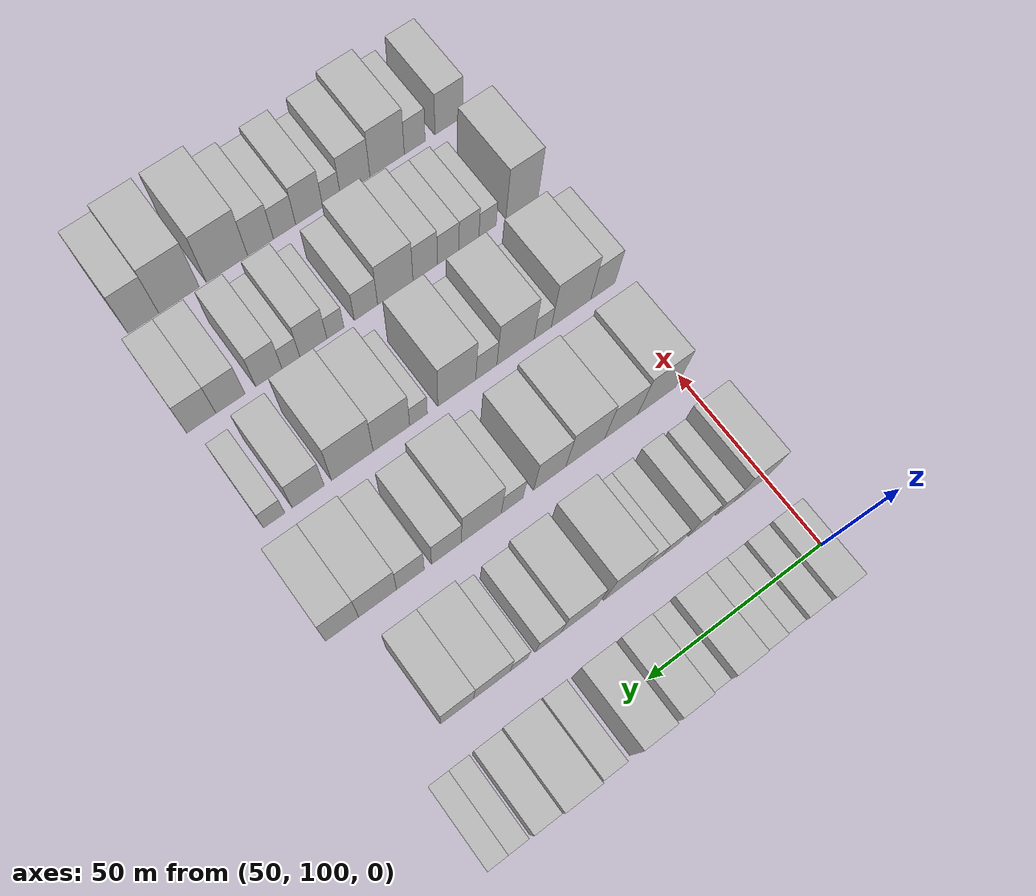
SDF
<sdf version="1.6">
 <world name="default">
  <model name="building_76">
   <static>1</static>
   <pose>50.0000 107.3215 0 0.000000 0.000000 0.000000</pose>
   <link name="link">
    <pose>0 0 9.00 0 0 0</pose>
    <collision name="collision"><geometry><box><size>20.0000 8.4116 18.0000</size></box></geometry></collision>
    <visual name="visual">
     <cast_shadows>0</cast_shadows>
     <geometry><box><size>20.0000 8.4116 18.0000</size></box></geometry>
     <material>
      <script>
       <uri>model://HANNAS_wall/materials/scripts</uri>
       <uri>model://HANNAS_wall/materials/textures</uri>
       <name>vrc/HANNAS_wall</name>
      </script>
     </material>
    </visual>
   </link>
  </model>
  <model name="building_77">
   <static>1</static>
   <pose>50.0000 114.5754 0 0.000000 0.000000 0.000000</pose>
   <link name="link">
    <pose>0 0 7.50 0 0 0</pose>
    <collision name="collision"><geometry><box><size>20.0000 6.0961 15.0000</size></box></geometry></collision>
    <visual name="visual">
     <cast_shadows>0</cast_shadows>
     <geometry><box><size>20.0000 6.0961 15.0000</size></box></geometry>
     <material>
      <script>
       <uri>model://HANNAS_wall/materials/scripts</uri>
       <uri>model://HANNAS_wall/materials/textures</uri>
       <name>vrc/HANNAS_wall</name>
      </script>
     </material>
    </visual>
   </link>
  </model>
  <model name="building_78">
   <static>1</static>
   <pose>50.0000 120.5097 0 0.000000 0.000000 0.000000</pose>
   <link name="link">
    <pose>0 0 6.00 0 0 0</pose>
    <collision name="collision"><geometry><box><size>20.0000 5.7727 12.0000</size></box></geometry></collision>
    <visual name="visual">
     <cast_shadows>0</cast_shadows>
     <geometry><box><size>20.0000 5.7727 12.0000</size></box></geometry>
     <material>
      <script>
       <uri>model://HANNAS_wall/materials/scripts</uri>
       <uri>model://HANNAS_wall/materials/textures</uri>
       <name>vrc/HANNAS_wall</name>
      </script>
     </material>
    </visual>
   </link>
  </model>
  <model name="building_79">
   <static>1</static>
   <pose>50.0000 126.5736 0 0.000000 0.000000 0.000000</pose>
   <link name="link">
    <pose>0 0 7.50 0 0 0</pose>
    <collision name="collision"><geometry><box><size>20.0000 6.3551 15.0000</size></box></geometry></collision>
    <visual name="visual">
     <cast_shadows>0</cast_shadows>
     <geometry><box><size>20.0000 6.3551 15.0000</size></box></geometry>
     <material>
      <script>
       <uri>model://HANNAS_wall/materials/scripts</uri>
       <uri>model://HANNAS_wall/materials/textures</uri>
       <name>vrc/HANNAS_wall</name>
      </script>
     </material>
    </visual>
   </link>
  </model>
  <model name="building_80">
   <static>1</static>
   <pose>50.0000 133.9557 0 0.000000 0.000000 0.000000</pose>
   <link name="link">
    <pose>0 0 9.00 0 0 0</pose>
    <collision name="collision"><geometry><box><size>20.0000 8.4091 18.0000</size></box></geometry></collision>
    <visual name="visual">
     <cast_shadows>0</cast_shadows>
     <geometry><box><size>20.0000 8.4091 18.0000</size></box></geometry>
     <material>
      <script>
       <uri>model://HANNAS_wall/materials/scripts</uri>
       <uri>model://HANNAS_wall/materials/textures</uri>
       <name>vrc/HANNAS_wall</name>
      </script>
     </material>
    </visual>
   </link>
  </model>
  <model name="building_81">
   <static>1</static>
   <pose>50.0000 140.6419 0 0.000000 0.000000 0.000000</pose>
   <link name="link">
    <pose>0 0 6.00 0 0 0</pose>
    <collision name="collision"><geometry><box><size>20.0000 4.9633 12.0000</size></box></geometry></collision>
    <visual name="visual">
     <cast_shadows>0</cast_shadows>
     <geometry><box><size>20.0000 4.9633 12.0000</size></box></geometry>
     <material>
      <script>
       <uri>model://HANNAS_wall/materials/scripts</uri>
       <uri>model://HANNAS_wall/materials/textures</uri>
       <name>vrc/HANNAS_wall</name>
      </script>
     </material>
    </visual>
   </link>
  </model>
  <model name="building_82">
   <static>1</static>
   <pose>50.0000 148.2240 0 0.000000 0.000000 0.000000</pose>
   <link name="link">
    <pose>0 0 9.00 0 0 0</pose>
    <collision name="collision"><geometry><box><size>20.0000 8.2010 18.0000</size></box></geometry></collision>
    <visual name="visual">
     <cast_shadows>0</cast_shadows>
     <geometry><box><size>20.0000 8.2010 18.0000</size></box></geometry>
     <material>
      <script>
       <uri>model://HANNAS_wall/materials/scripts</uri>
       <uri>model://HANNAS_wall/materials/textures</uri>
       <name>vrc/HANNAS_wall</name>
      </script>
     </material>
    </visual>
   </link>
  </model>
  <model name="building_83">
   <static>1</static>
   <pose>50.0000 158.7128 0 0.000000 0.000000 0.000000</pose>
   <link name="link">
    <pose>0 0 10.50 0 0 0</pose>
    <collision name="collision"><geometry><box><size>20.0000 8.7766 21.0000</size></box></geometry></collision>
    <visual name="visual">
     <cast_shadows>0</cast_shadows>
     <geometry><box><size>20.0000 8.7766 21.0000</size></box></geometry>
     <material>
      <script>
       <uri>model://HANNAS_wall/materials/scripts</uri>
       <uri>model://HANNAS_wall/materials/textures</uri>
       <name>vrc/HANNAS_wall</name>
      </script>
     </material>
    </visual>
   </link>
  </model>
  <model name="building_84">
   <static>1</static>
   <pose>50.0000 169.2165 0 0.000000 0.000000 0.000000</pose>
   <link name="link">
    <pose>0 0 7.50 0 0 0</pose>
    <collision name="collision"><geometry><box><size>20.0000 6.2307 15.0000</size></box></geometry></collision>
    <visual name="visual">
     <cast_shadows>0</cast_shadows>
     <geometry><box><size>20.0000 6.2307 15.0000</size></box></geometry>
     <material>
      <script>
       <uri>model://HANNAS_wall/materials/scripts</uri>
       <uri>model://HANNAS_wall/materials/textures</uri>
       <name>vrc/HANNAS_wall</name>
      </script>
     </material>
    </visual>
   </link>
  </model>
  <model name="building_85">
   <static>1</static>
   <pose>50.0000 178.0529 0 0.000000 0.000000 0.000000</pose>
   <link name="link">
    <pose>0 0 10.50 0 0 0</pose>
    <collision name="collision"><geometry><box><size>20.0000 9.4421 21.0000</size></box></geometry></collision>
    <visual name="visual">
     <cast_shadows>0</cast_shadows>
     <geometry><box><size>20.0000 9.4421 21.0000</size></box></geometry>
     <material>
      <script>
       <uri>model://HANNAS_wall/materials/scripts</uri>
       <uri>model://HANNAS_wall/materials/textures</uri>
       <name>vrc/HANNAS_wall</name>
      </script>
     </material>
    </visual>
   </link>
  </model>
  <model name="building_86">
   <static>1</static>
   <pose>50.0000 186.3196 0 0.000000 0.000000 0.000000</pose>
   <link name="link">
    <pose>0 0 7.50 0 0 0</pose>
    <collision name="collision"><geometry><box><size>20.0000 7.0913 15.0000</size></box></geometry></collision>
    <visual name="visual">
     <cast_shadows>0</cast_shadows>
     <geometry><box><size>20.0000 7.0913 15.0000</size></box></geometry>
     <material>
      <script>
       <uri>model://HANNAS_wall/materials/scripts</uri>
       <uri>model://HANNAS_wall/materials/textures</uri>
       <name>vrc/HANNAS_wall</name>
      </script>
     </material>
    </visual>
   </link>
  </model>
  <model name="building_87">
   <static>1</static>
   <pose>50.0000 193.4706 0 0.000000 0.000000 0.000000</pose>
   <link name="link">
    <pose>0 0 6.00 0 0 0</pose>
    <collision name="collision"><geometry><box><size>20.0000 5.2106 12.0000</size></box></geometry></collision>
    <visual name="visual">
     <cast_shadows>0</cast_shadows>
     <geometry><box><size>20.0000 5.2106 12.0000</size></box></geometry>
     <material>
      <script>
       <uri>model://HANNAS_wall/materials/scripts</uri>
       <uri>model://HANNAS_wall/materials/textures</uri>
       <name>vrc/HANNAS_wall</name>
      </script>
     </material>
    </visual>
   </link>
  </model>
  <model name="building_88">
   <static>1</static>
   <pose>50.0000 198.6816 0 0.000000 0.000000 0.000000</pose>
   <link name="link">
    <pose>0 0 6.00 0 0 0</pose>
    <collision name="collision"><geometry><box><size>20.0000 5.2114 12.0000</size></box></geometry></collision>
    <visual name="visual">
     <cast_shadows>0</cast_shadows>
     <geometry><box><size>20.0000 5.2114 12.0000</size></box></geometry>
     <material>
      <script>
       <uri>model://HANNAS_wall/materials/scripts</uri>
       <uri>model://HANNAS_wall/materials/textures</uri>
       <name>vrc/HANNAS_wall</name>
      </script>
     </material>
    </visual>
   </link>
  </model>
  <model name="building_193">
   <static>1</static>
   <pose>79.0000 104.6618 0 0.000000 0.000000 0.000000</pose>
   <link name="link">
    <pose>0 0 10.50 0 0 0</pose>
    <collision name="collision"><geometry><box><size>20.0000 10.0285 21.0000</size></box></geometry></collision>
    <visual name="visual">
     <cast_shadows>0</cast_shadows>
     <geometry><box><size>20.0000 10.0285 21.0000</size></box></geometry>
     <material>
      <script>
       <uri>model://HANNAS_wall/materials/scripts</uri>
       <uri>model://HANNAS_wall/materials/textures</uri>
       <name>vrc/HANNAS_wall</name>
      </script>
     </material>
    </visual>
   </link>
  </model>
  <model name="building_194">
   <static>1</static>
   <pose>79.0000 112.2124 0 0.000000 0.000000 0.000000</pose>
   <link name="link">
    <pose>0 0 6.00 0 0 0</pose>
    <collision name="collision"><geometry><box><size>20.0000 5.0727 12.0000</size></box></geometry></collision>
    <visual name="visual">
     <cast_shadows>0</cast_shadows>
     <geometry><box><size>20.0000 5.0727 12.0000</size></box></geometry>
     <material>
      <script>
       <uri>model://HANNAS_wall/materials/scripts</uri>
       <uri>model://HANNAS_wall/materials/textures</uri>
       <name>vrc/HANNAS_wall</name>
      </script>
     </material>
    </visual>
   </link>
  </model>
  <model name="building_195">
   <static>1</static>
   <pose>79.0000 119.7548 0 0.000000 0.000000 0.000000</pose>
   <link name="link">
    <pose>0 0 7.50 0 0 0</pose>
    <collision name="collision"><geometry><box><size>20.0000 6.0122 15.0000</size></box></geometry></collision>
    <visual name="visual">
     <cast_shadows>0</cast_shadows>
     <geometry><box><size>20.0000 6.0122 15.0000</size></box></geometry>
     <material>
      <script>
       <uri>model://HANNAS_wall/materials/scripts</uri>
       <uri>model://HANNAS_wall/materials/textures</uri>
       <name>vrc/HANNAS_wall</name>
      </script>
     </material>
    </visual>
   </link>
  </model>
  <model name="building_196">
   <static>1</static>
   <pose>79.0000 127.6562 0 0.000000 0.000000 0.000000</pose>
   <link name="link">
    <pose>0 0 6.00 0 0 0</pose>
    <collision name="collision"><geometry><box><size>20.0000 5.7906 12.0000</size></box></geometry></collision>
    <visual name="visual">
     <cast_shadows>0</cast_shadows>
     <geometry><box><size>20.0000 5.7906 12.0000</size></box></geometry>
     <material>
      <script>
       <uri>model://HANNAS_wall/materials/scripts</uri>
       <uri>model://HANNAS_wall/materials/textures</uri>
       <name>vrc/HANNAS_wall</name>
      </script>
     </material>
    </visual>
   </link>
  </model>
  <model name="building_197">
   <static>1</static>
   <pose>79.0000 133.4820 0 0.000000 0.000000 0.000000</pose>
   <link name="link">
    <pose>0 0 6.00 0 0 0</pose>
    <collision name="collision"><geometry><box><size>20.0000 5.8611 12.0000</size></box></geometry></collision>
    <visual name="visual">
     <cast_shadows>0</cast_shadows>
     <geometry><box><size>20.0000 5.8611 12.0000</size></box></geometry>
     <material>
      <script>
       <uri>model://HANNAS_wall/materials/scripts</uri>
       <uri>model://HANNAS_wall/materials/textures</uri>
       <name>vrc/HANNAS_wall</name>
      </script>
     </material>
    </visual>
   </link>
  </model>
  <model name="building_198">
   <static>1</static>
   <pose>79.0000 141.7296 0 0.000000 0.000000 0.000000</pose>
   <link name="link">
    <pose>0 0 12.00 0 0 0</pose>
    <collision name="collision"><geometry><box><size>20.0000 10.6342 24.0000</size></box></geometry></collision>
    <visual name="visual">
     <cast_shadows>0</cast_shadows>
     <geometry><box><size>20.0000 10.6342 24.0000</size></box></geometry>
     <material>
      <script>
       <uri>model://HANNAS_wall/materials/scripts</uri>
       <uri>model://HANNAS_wall/materials/textures</uri>
       <name>vrc/HANNAS_wall</name>
      </script>
     </material>
    </visual>
   </link>
  </model>
  <model name="building_199">
   <static>1</static>
   <pose>79.0000 154.0827 0 0.000000 0.000000 0.000000</pose>
   <link name="link">
    <pose>0 0 10.50 0 0 0</pose>
    <collision name="collision"><geometry><box><size>20.0000 10.0721 21.0000</size></box></geometry></collision>
    <visual name="visual">
     <cast_shadows>0</cast_shadows>
     <geometry><box><size>20.0000 10.0721 21.0000</size></box></geometry>
     <material>
      <script>
       <uri>model://HANNAS_wall/materials/scripts</uri>
       <uri>model://HANNAS_wall/materials/textures</uri>
       <name>vrc/HANNAS_wall</name>
      </script>
     </material>
    </visual>
   </link>
  </model>
  <model name="building_200">
   <static>1</static>
   <pose>79.0000 162.6090 0 0.000000 0.000000 0.000000</pose>
   <link name="link">
    <pose>0 0 7.50 0 0 0</pose>
    <collision name="collision"><geometry><box><size>20.0000 6.9805 15.0000</size></box></geometry></collision>
    <visual name="visual">
     <cast_shadows>0</cast_shadows>
     <geometry><box><size>20.0000 6.9805 15.0000</size></box></geometry>
     <material>
      <script>
       <uri>model://HANNAS_wall/materials/scripts</uri>
       <uri>model://HANNAS_wall/materials/textures</uri>
       <name>vrc/HANNAS_wall</name>
      </script>
     </material>
    </visual>
   </link>
  </model>
  <model name="building_201">
   <static>1</static>
   <pose>79.0000 170.5784 0 0.000000 0.000000 0.000000</pose>
   <link name="link">
    <pose>0 0 6.00 0 0 0</pose>
    <collision name="collision"><geometry><box><size>20.0000 4.9582 12.0000</size></box></geometry></collision>
    <visual name="visual">
     <cast_shadows>0</cast_shadows>
     <geometry><box><size>20.0000 4.9582 12.0000</size></box></geometry>
     <material>
      <script>
       <uri>model://HANNAS_wall/materials/scripts</uri>
       <uri>model://HANNAS_wall/materials/textures</uri>
       <name>vrc/HANNAS_wall</name>
      </script>
     </material>
    </visual>
   </link>
  </model>
  <model name="building_202">
   <static>1</static>
   <pose>79.0000 177.9624 0 0.000000 0.000000 0.000000</pose>
   <link name="link">
    <pose>0 0 10.50 0 0 0</pose>
    <collision name="collision"><geometry><box><size>20.0000 9.8099 21.0000</size></box></geometry></collision>
    <visual name="visual">
     <cast_shadows>0</cast_shadows>
     <geometry><box><size>20.0000 9.8099 21.0000</size></box></geometry>
     <material>
      <script>
       <uri>model://HANNAS_wall/materials/scripts</uri>
       <uri>model://HANNAS_wall/materials/textures</uri>
       <name>vrc/HANNAS_wall</name>
      </script>
     </material>
    </visual>
   </link>
  </model>
  <model name="building_203">
   <static>1</static>
   <pose>79.0000 187.2474 0 0.000000 0.000000 0.000000</pose>
   <link name="link">
    <pose>0 0 10.50 0 0 0</pose>
    <collision name="collision"><geometry><box><size>20.0000 8.7601 21.0000</size></box></geometry></collision>
    <visual name="visual">
     <cast_shadows>0</cast_shadows>
     <geometry><box><size>20.0000 8.7601 21.0000</size></box></geometry>
     <material>
      <script>
       <uri>model://HANNAS_wall/materials/scripts</uri>
       <uri>model://HANNAS_wall/materials/textures</uri>
       <name>vrc/HANNAS_wall</name>
      </script>
     </material>
    </visual>
   </link>
  </model>
  <model name="building_304">
   <static>1</static>
   <pose>108.0000 108.1765 0 0.000000 0.000000 0.000000</pose>
   <link name="link">
    <pose>0 0 12.00 0 0 0</pose>
    <collision name="collision"><geometry><box><size>20.0000 11.5006 24.0000</size></box></geometry></collision>
    <visual name="visual">
     <cast_shadows>0</cast_shadows>
     <geometry><box><size>20.0000 11.5006 24.0000</size></box></geometry>
     <material>
      <script>
       <uri>model://HANNAS_wall/materials/scripts</uri>
       <uri>model://HANNAS_wall/materials/textures</uri>
       <name>vrc/HANNAS_wall</name>
      </script>
     </material>
    </visual>
   </link>
  </model>
  <model name="building_305">
   <static>1</static>
   <pose>108.0000 118.7630 0 0.000000 0.000000 0.000000</pose>
   <link name="link">
    <pose>0 0 10.50 0 0 0</pose>
    <collision name="collision"><geometry><box><size>20.0000 9.6722 21.0000</size></box></geometry></collision>
    <visual name="visual">
     <cast_shadows>0</cast_shadows>
     <geometry><box><size>20.0000 9.6722 21.0000</size></box></geometry>
     <material>
      <script>
       <uri>model://HANNAS_wall/materials/scripts</uri>
       <uri>model://HANNAS_wall/materials/textures</uri>
       <name>vrc/HANNAS_wall</name>
      </script>
     </material>
    </visual>
   </link>
  </model>
  <model name="building_306">
   <static>1</static>
   <pose>108.0000 129.2975 0 0.000000 0.000000 0.000000</pose>
   <link name="link">
    <pose>0 0 12.00 0 0 0</pose>
    <collision name="collision"><geometry><box><size>20.0000 11.3968 24.0000</size></box></geometry></collision>
    <visual name="visual">
     <cast_shadows>0</cast_shadows>
     <geometry><box><size>20.0000 11.3968 24.0000</size></box></geometry>
     <material>
      <script>
       <uri>model://HANNAS_wall/materials/scripts</uri>
       <uri>model://HANNAS_wall/materials/textures</uri>
       <name>vrc/HANNAS_wall</name>
      </script>
     </material>
    </visual>
   </link>
  </model>
  <model name="building_307">
   <static>1</static>
   <pose>108.0000 139.6166 0 0.000000 0.000000 0.000000</pose>
   <link name="link">
    <pose>0 0 10.50 0 0 0</pose>
    <collision name="collision"><geometry><box><size>20.0000 9.2415 21.0000</size></box></geometry></collision>
    <visual name="visual">
     <cast_shadows>0</cast_shadows>
     <geometry><box><size>20.0000 9.2415 21.0000</size></box></geometry>
     <material>
      <script>
       <uri>model://HANNAS_wall/materials/scripts</uri>
       <uri>model://HANNAS_wall/materials/textures</uri>
       <name>vrc/HANNAS_wall</name>
      </script>
     </material>
    </visual>
   </link>
  </model>
  <model name="building_308">
   <static>1</static>
   <pose>108.0000 150.3400 0 0.000000 0.000000 0.000000</pose>
   <link name="link">
    <pose>0 0 7.50 0 0 0</pose>
    <collision name="collision"><geometry><box><size>20.0000 6.2052 15.0000</size></box></geometry></collision>
    <visual name="visual">
     <cast_shadows>0</cast_shadows>
     <geometry><box><size>20.0000 6.2052 15.0000</size></box></geometry>
     <material>
      <script>
       <uri>model://HANNAS_wall/materials/scripts</uri>
       <uri>model://HANNAS_wall/materials/textures</uri>
       <name>vrc/HANNAS_wall</name>
      </script>
     </material>
    </visual>
   </link>
  </model>
  <model name="building_309">
   <static>1</static>
   <pose>108.0000 159.0635 0 0.000000 0.000000 0.000000</pose>
   <link name="link">
    <pose>0 0 12.00 0 0 0</pose>
    <collision name="collision"><geometry><box><size>20.0000 11.2418 24.0000</size></box></geometry></collision>
    <visual name="visual">
     <cast_shadows>0</cast_shadows>
     <geometry><box><size>20.0000 11.2418 24.0000</size></box></geometry>
     <material>
      <script>
       <uri>model://HANNAS_wall/materials/scripts</uri>
       <uri>model://HANNAS_wall/materials/textures</uri>
       <name>vrc/HANNAS_wall</name>
      </script>
     </material>
    </visual>
   </link>
  </model>
  <model name="building_310">
   <static>1</static>
   <pose>108.0000 168.7583 0 0.000000 0.000000 0.000000</pose>
   <link name="link">
    <pose>0 0 9.00 0 0 0</pose>
    <collision name="collision"><geometry><box><size>20.0000 8.1477 18.0000</size></box></geometry></collision>
    <visual name="visual">
     <cast_shadows>0</cast_shadows>
     <geometry><box><size>20.0000 8.1477 18.0000</size></box></geometry>
     <material>
      <script>
       <uri>model://HANNAS_wall/materials/scripts</uri>
       <uri>model://HANNAS_wall/materials/textures</uri>
       <name>vrc/HANNAS_wall</name>
      </script>
     </material>
    </visual>
   </link>
  </model>
  <model name="building_311">
   <static>1</static>
   <pose>108.0000 178.5908 0 0.000000 0.000000 0.000000</pose>
   <link name="link">
    <pose>0 0 9.00 0 0 0</pose>
    <collision name="collision"><geometry><box><size>20.0000 7.5173 18.0000</size></box></geometry></collision>
    <visual name="visual">
     <cast_shadows>0</cast_shadows>
     <geometry><box><size>20.0000 7.5173 18.0000</size></box></geometry>
     <material>
      <script>
       <uri>model://HANNAS_wall/materials/scripts</uri>
       <uri>model://HANNAS_wall/materials/textures</uri>
       <name>vrc/HANNAS_wall</name>
      </script>
     </material>
    </visual>
   </link>
  </model>
  <model name="building_312">
   <static>1</static>
   <pose>108.0000 187.4708 0 0.000000 0.000000 0.000000</pose>
   <link name="link">
    <pose>0 0 10.50 0 0 0</pose>
    <collision name="collision"><geometry><box><size>20.0000 10.2427 21.0000</size></box></geometry></collision>
    <visual name="visual">
     <cast_shadows>0</cast_shadows>
     <geometry><box><size>20.0000 10.2427 21.0000</size></box></geometry>
     <material>
      <script>
       <uri>model://HANNAS_wall/materials/scripts</uri>
       <uri>model://HANNAS_wall/materials/textures</uri>
       <name>vrc/HANNAS_wall</name>
      </script>
     </material>
    </visual>
   </link>
  </model>
  <model name="building_313">
   <static>1</static>
   <pose>108.0000 197.0011 0 0.000000 0.000000 0.000000</pose>
   <link name="link">
    <pose>0 0 10.50 0 0 0</pose>
    <collision name="collision"><geometry><box><size>20.0000 8.8179 21.0000</size></box></geometry></collision>
    <visual name="visual">
     <cast_shadows>0</cast_shadows>
     <geometry><box><size>20.0000 8.8179 21.0000</size></box></geometry>
     <material>
      <script>
       <uri>model://HANNAS_wall/materials/scripts</uri>
       <uri>model://HANNAS_wall/materials/textures</uri>
       <name>vrc/HANNAS_wall</name>
      </script>
     </material>
    </visual>
   </link>
  </model>
  <model name="building_417">
   <static>1</static>
   <pose>137.0000 101.0378 0 0.000000 0.000000 0.000000</pose>
   <link name="link">
    <pose>0 0 9.00 0 0 0</pose>
    <collision name="collision"><geometry><box><size>20.0000 7.3707 18.0000</size></box></geometry></collision>
    <visual name="visual">
     <cast_shadows>0</cast_shadows>
     <geometry><box><size>20.0000 7.3707 18.0000</size></box></geometry>
     <material>
      <script>
       <uri>model://HANNAS_wall/materials/scripts</uri>
       <uri>model://HANNAS_wall/materials/textures</uri>
       <name>vrc/HANNAS_wall</name>
      </script>
     </material>
    </visual>
   </link>
  </model>
  <model name="building_418">
   <static>1</static>
   <pose>137.0000 110.6817 0 0.000000 0.000000 0.000000</pose>
   <link name="link">
    <pose>0 0 12.00 0 0 0</pose>
    <collision name="collision"><geometry><box><size>20.0000 11.9171 24.0000</size></box></geometry></collision>
    <visual name="visual">
     <cast_shadows>0</cast_shadows>
     <geometry><box><size>20.0000 11.9171 24.0000</size></box></geometry>
     <material>
      <script>
       <uri>model://HANNAS_wall/materials/scripts</uri>
       <uri>model://HANNAS_wall/materials/textures</uri>
       <name>vrc/HANNAS_wall</name>
      </script>
     </material>
    </visual>
   </link>
  </model>
  <model name="building_419">
   <static>1</static>
   <pose>137.0000 119.2108 0 0.000000 0.000000 0.000000</pose>
   <link name="link">
    <pose>0 0 6.00 0 0 0</pose>
    <collision name="collision"><geometry><box><size>20.0000 5.1411 12.0000</size></box></geometry></collision>
    <visual name="visual">
     <cast_shadows>0</cast_shadows>
     <geometry><box><size>20.0000 5.1411 12.0000</size></box></geometry>
     <material>
      <script>
       <uri>model://HANNAS_wall/materials/scripts</uri>
       <uri>model://HANNAS_wall/materials/textures</uri>
       <name>vrc/HANNAS_wall</name>
      </script>
     </material>
    </visual>
   </link>
  </model>
  <model name="building_420">
   <static>1</static>
   <pose>137.0000 127.2885 0 0.000000 0.000000 0.000000</pose>
   <link name="link">
    <pose>0 0 12.00 0 0 0</pose>
    <collision name="collision"><geometry><box><size>20.0000 11.0143 24.0000</size></box></geometry></collision>
    <visual name="visual">
     <cast_shadows>0</cast_shadows>
     <geometry><box><size>20.0000 11.0143 24.0000</size></box></geometry>
     <material>
      <script>
       <uri>model://HANNAS_wall/materials/scripts</uri>
       <uri>model://HANNAS_wall/materials/textures</uri>
       <name>vrc/HANNAS_wall</name>
      </script>
     </material>
    </visual>
   </link>
  </model>
  <model name="building_421">
   <static>1</static>
   <pose>137.0000 135.8585 0 0.000000 0.000000 0.000000</pose>
   <link name="link">
    <pose>0 0 7.50 0 0 0</pose>
    <collision name="collision"><geometry><box><size>20.0000 6.1257 15.0000</size></box></geometry></collision>
    <visual name="visual">
     <cast_shadows>0</cast_shadows>
     <geometry><box><size>20.0000 6.1257 15.0000</size></box></geometry>
     <material>
      <script>
       <uri>model://HANNAS_wall/materials/scripts</uri>
       <uri>model://HANNAS_wall/materials/textures</uri>
       <name>vrc/HANNAS_wall</name>
      </script>
     </material>
    </visual>
   </link>
  </model>
  <model name="building_422">
   <static>1</static>
   <pose>137.0000 144.4029 0 0.000000 0.000000 0.000000</pose>
   <link name="link">
    <pose>0 0 12.00 0 0 0</pose>
    <collision name="collision"><geometry><box><size>20.0000 10.9632 24.0000</size></box></geometry></collision>
    <visual name="visual">
     <cast_shadows>0</cast_shadows>
     <geometry><box><size>20.0000 10.9632 24.0000</size></box></geometry>
     <material>
      <script>
       <uri>model://HANNAS_wall/materials/scripts</uri>
       <uri>model://HANNAS_wall/materials/textures</uri>
       <name>vrc/HANNAS_wall</name>
      </script>
     </material>
    </visual>
   </link>
  </model>
  <model name="building_423">
   <static>1</static>
   <pose>137.0000 155.3864 0 0.000000 0.000000 0.000000</pose>
   <link name="link">
    <pose>0 0 6.00 0 0 0</pose>
    <collision name="collision"><geometry><box><size>20.0000 5.0038 12.0000</size></box></geometry></collision>
    <visual name="visual">
     <cast_shadows>0</cast_shadows>
     <geometry><box><size>20.0000 5.0038 12.0000</size></box></geometry>
     <material>
      <script>
       <uri>model://HANNAS_wall/materials/scripts</uri>
       <uri>model://HANNAS_wall/materials/textures</uri>
       <name>vrc/HANNAS_wall</name>
      </script>
     </material>
    </visual>
   </link>
  </model>
  <model name="building_424">
   <static>1</static>
   <pose>137.0000 163.0431 0 0.000000 0.000000 0.000000</pose>
   <link name="link">
    <pose>0 0 10.50 0 0 0</pose>
    <collision name="collision"><geometry><box><size>20.0000 10.3096 21.0000</size></box></geometry></collision>
    <visual name="visual">
     <cast_shadows>0</cast_shadows>
     <geometry><box><size>20.0000 10.3096 21.0000</size></box></geometry>
     <material>
      <script>
       <uri>model://HANNAS_wall/materials/scripts</uri>
       <uri>model://HANNAS_wall/materials/textures</uri>
       <name>vrc/HANNAS_wall</name>
      </script>
     </material>
    </visual>
   </link>
  </model>
  <model name="building_425">
   <static>1</static>
   <pose>137.0000 173.9963 0 0.000000 0.000000 0.000000</pose>
   <link name="link">
    <pose>0 0 12.00 0 0 0</pose>
    <collision name="collision"><geometry><box><size>20.0000 11.5968 24.0000</size></box></geometry></collision>
    <visual name="visual">
     <cast_shadows>0</cast_shadows>
     <geometry><box><size>20.0000 11.5968 24.0000</size></box></geometry>
     <material>
      <script>
       <uri>model://HANNAS_wall/materials/scripts</uri>
       <uri>model://HANNAS_wall/materials/textures</uri>
       <name>vrc/HANNAS_wall</name>
      </script>
     </material>
    </visual>
   </link>
  </model>
  <model name="building_426">
   <static>1</static>
   <pose>137.0000 186.1723 0 0.000000 0.000000 0.000000</pose>
   <link name="link">
    <pose>0 0 9.00 0 0 0</pose>
    <collision name="collision"><geometry><box><size>20.0000 8.7551 18.0000</size></box></geometry></collision>
    <visual name="visual">
     <cast_shadows>0</cast_shadows>
     <geometry><box><size>20.0000 8.7551 18.0000</size></box></geometry>
     <material>
      <script>
       <uri>model://HANNAS_wall/materials/scripts</uri>
       <uri>model://HANNAS_wall/materials/textures</uri>
       <name>vrc/HANNAS_wall</name>
      </script>
     </material>
    </visual>
   </link>
  </model>
  <model name="building_427">
   <static>1</static>
   <pose>137.0000 195.4515 0 0.000000 0.000000 0.000000</pose>
   <link name="link">
    <pose>0 0 6.00 0 0 0</pose>
    <collision name="collision"><geometry><box><size>20.0000 5.8033 12.0000</size></box></geometry></collision>
    <visual name="visual">
     <cast_shadows>0</cast_shadows>
     <geometry><box><size>20.0000 5.8033 12.0000</size></box></geometry>
     <material>
      <script>
       <uri>model://HANNAS_wall/materials/scripts</uri>
       <uri>model://HANNAS_wall/materials/textures</uri>
       <name>vrc/HANNAS_wall</name>
      </script>
     </material>
    </visual>
   </link>
  </model>
  <model name="building_527">
   <static>1</static>
   <pose>166.0000 103.1486 0 0.000000 0.000000 0.000000</pose>
   <link name="link">
    <pose>0 0 12.00 0 0 0</pose>
    <collision name="collision"><geometry><box><size>20.0000 9.9334 24.0000</size></box></geometry></collision>
    <visual name="visual">
     <cast_shadows>0</cast_shadows>
     <geometry><box><size>20.0000 9.9334 24.0000</size></box></geometry>
     <material>
      <script>
       <uri>model://HANNAS_wall/materials/scripts</uri>
       <uri>model://HANNAS_wall/materials/textures</uri>
       <name>vrc/HANNAS_wall</name>
      </script>
     </material>
    </visual>
   </link>
  </model>
  <model name="building_528">
   <static>1</static>
   <pose>166.0000 113.7177 0 0.000000 0.000000 0.000000</pose>
   <link name="link">
    <pose>0 0 6.00 0 0 0</pose>
    <collision name="collision"><geometry><box><size>20.0000 5.2047 12.0000</size></box></geometry></collision>
    <visual name="visual">
     <cast_shadows>0</cast_shadows>
     <geometry><box><size>20.0000 5.2047 12.0000</size></box></geometry>
     <material>
      <script>
       <uri>model://HANNAS_wall/materials/scripts</uri>
       <uri>model://HANNAS_wall/materials/textures</uri>
       <name>vrc/HANNAS_wall</name>
      </script>
     </material>
    </visual>
   </link>
  </model>
  <model name="building_529">
   <static>1</static>
   <pose>166.0000 119.3423 0 0.000000 0.000000 0.000000</pose>
   <link name="link">
    <pose>0 0 7.50 0 0 0</pose>
    <collision name="collision"><geometry><box><size>20.0000 6.0446 15.0000</size></box></geometry></collision>
    <visual name="visual">
     <cast_shadows>0</cast_shadows>
     <geometry><box><size>20.0000 6.0446 15.0000</size></box></geometry>
     <material>
      <script>
       <uri>model://HANNAS_wall/materials/scripts</uri>
       <uri>model://HANNAS_wall/materials/textures</uri>
       <name>vrc/HANNAS_wall</name>
      </script>
     </material>
    </visual>
   </link>
  </model>
  <model name="building_530">
   <static>1</static>
   <pose>166.0000 125.5815 0 0.000000 0.000000 0.000000</pose>
   <link name="link">
    <pose>0 0 7.50 0 0 0</pose>
    <collision name="collision"><geometry><box><size>20.0000 6.4337 15.0000</size></box></geometry></collision>
    <visual name="visual">
     <cast_shadows>0</cast_shadows>
     <geometry><box><size>20.0000 6.4337 15.0000</size></box></geometry>
     <material>
      <script>
       <uri>model://HANNAS_wall/materials/scripts</uri>
       <uri>model://HANNAS_wall/materials/textures</uri>
       <name>vrc/HANNAS_wall</name>
      </script>
     </material>
    </visual>
   </link>
  </model>
  <model name="building_531">
   <static>1</static>
   <pose>166.0000 132.4009 0 0.000000 0.000000 0.000000</pose>
   <link name="link">
    <pose>0 0 9.00 0 0 0</pose>
    <collision name="collision"><geometry><box><size>20.0000 7.2052 18.0000</size></box></geometry></collision>
    <visual name="visual">
     <cast_shadows>0</cast_shadows>
     <geometry><box><size>20.0000 7.2052 18.0000</size></box></geometry>
     <material>
      <script>
       <uri>model://HANNAS_wall/materials/scripts</uri>
       <uri>model://HANNAS_wall/materials/textures</uri>
       <name>vrc/HANNAS_wall</name>
      </script>
     </material>
    </visual>
   </link>
  </model>
  <model name="building_532">
   <static>1</static>
   <pose>166.0000 141.1898 0 0.000000 0.000000 0.000000</pose>
   <link name="link">
    <pose>0 0 10.50 0 0 0</pose>
    <collision name="collision"><geometry><box><size>20.0000 10.3727 21.0000</size></box></geometry></collision>
    <visual name="visual">
     <cast_shadows>0</cast_shadows>
     <geometry><box><size>20.0000 10.3727 21.0000</size></box></geometry>
     <material>
      <script>
       <uri>model://HANNAS_wall/materials/scripts</uri>
       <uri>model://HANNAS_wall/materials/textures</uri>
       <name>vrc/HANNAS_wall</name>
      </script>
     </material>
    </visual>
   </link>
  </model>
  <model name="building_533">
   <static>1</static>
   <pose>166.0000 149.7647 0 0.000000 0.000000 0.000000</pose>
   <link name="link">
    <pose>0 0 7.50 0 0 0</pose>
    <collision name="collision"><geometry><box><size>20.0000 6.7771 15.0000</size></box></geometry></collision>
    <visual name="visual">
     <cast_shadows>0</cast_shadows>
     <geometry><box><size>20.0000 6.7771 15.0000</size></box></geometry>
     <material>
      <script>
       <uri>model://HANNAS_wall/materials/scripts</uri>
       <uri>model://HANNAS_wall/materials/textures</uri>
       <name>vrc/HANNAS_wall</name>
      </script>
     </material>
    </visual>
   </link>
  </model>
  <model name="building_534">
   <static>1</static>
   <pose>166.0000 158.5956 0 0.000000 0.000000 0.000000</pose>
   <link name="link">
    <pose>0 0 6.00 0 0 0</pose>
    <collision name="collision"><geometry><box><size>20.0000 4.8846 12.0000</size></box></geometry></collision>
    <visual name="visual">
     <cast_shadows>0</cast_shadows>
     <geometry><box><size>20.0000 4.8846 12.0000</size></box></geometry>
     <material>
      <script>
       <uri>model://HANNAS_wall/materials/scripts</uri>
       <uri>model://HANNAS_wall/materials/textures</uri>
       <name>vrc/HANNAS_wall</name>
      </script>
     </material>
    </visual>
   </link>
  </model>
  <model name="building_535">
   <static>1</static>
   <pose>166.0000 164.9054 0 0.000000 0.000000 0.000000</pose>
   <link name="link">
    <pose>0 0 9.00 0 0 0</pose>
    <collision name="collision"><geometry><box><size>20.0000 7.7350 18.0000</size></box></geometry></collision>
    <visual name="visual">
     <cast_shadows>0</cast_shadows>
     <geometry><box><size>20.0000 7.7350 18.0000</size></box></geometry>
     <material>
      <script>
       <uri>model://HANNAS_wall/materials/scripts</uri>
       <uri>model://HANNAS_wall/materials/textures</uri>
       <name>vrc/HANNAS_wall</name>
      </script>
     </material>
    </visual>
   </link>
  </model>
  <model name="building_536">
   <static>1</static>
   <pose>166.0000 171.2828 0 0.000000 0.000000 0.000000</pose>
   <link name="link">
    <pose>0 0 6.00 0 0 0</pose>
    <collision name="collision"><geometry><box><size>20.0000 5.0199 12.0000</size></box></geometry></collision>
    <visual name="visual">
     <cast_shadows>0</cast_shadows>
     <geometry><box><size>20.0000 5.0199 12.0000</size></box></geometry>
     <material>
      <script>
       <uri>model://HANNAS_wall/materials/scripts</uri>
       <uri>model://HANNAS_wall/materials/textures</uri>
       <name>vrc/HANNAS_wall</name>
      </script>
     </material>
    </visual>
   </link>
  </model>
  <model name="building_537">
   <static>1</static>
   <pose>166.0000 177.4854 0 0.000000 0.000000 0.000000</pose>
   <link name="link">
    <pose>0 0 9.00 0 0 0</pose>
    <collision name="collision"><geometry><box><size>20.0000 7.3855 18.0000</size></box></geometry></collision>
    <visual name="visual">
     <cast_shadows>0</cast_shadows>
     <geometry><box><size>20.0000 7.3855 18.0000</size></box></geometry>
     <material>
      <script>
       <uri>model://HANNAS_wall/materials/scripts</uri>
       <uri>model://HANNAS_wall/materials/textures</uri>
       <name>vrc/HANNAS_wall</name>
      </script>
     </material>
    </visual>
   </link>
  </model>
  <model name="building_538">
   <static>1</static>
   <pose>166.0000 188.1903 0 0.000000 0.000000 0.000000</pose>
   <link name="link">
    <pose>0 0 9.00 0 0 0</pose>
    <collision name="collision"><geometry><box><size>20.0000 8.0242 18.0000</size></box></geometry></collision>
    <visual name="visual">
     <cast_shadows>0</cast_shadows>
     <geometry><box><size>20.0000 8.0242 18.0000</size></box></geometry>
     <material>
      <script>
       <uri>model://HANNAS_wall/materials/scripts</uri>
       <uri>model://HANNAS_wall/materials/textures</uri>
       <name>vrc/HANNAS_wall</name>
      </script>
     </material>
    </visual>
   </link>
  </model>
  <model name="building_539">
   <static>1</static>
   <pose>166.0000 196.2116 0 0.000000 0.000000 0.000000</pose>
   <link name="link">
    <pose>0 0 9.00 0 0 0</pose>
    <collision name="collision"><geometry><box><size>20.0000 8.0185 18.0000</size></box></geometry></collision>
    <visual name="visual">
     <cast_shadows>0</cast_shadows>
     <geometry><box><size>20.0000 8.0185 18.0000</size></box></geometry>
     <material>
      <script>
       <uri>model://HANNAS_wall/materials/scripts</uri>
       <uri>model://HANNAS_wall/materials/textures</uri>
       <name>vrc/HANNAS_wall</name>
      </script>
     </material>
    </visual>
   </link>
  </model>
  <model name="building_647">
   <static>1</static>
   <pose>195.0000 104.0810 0 0.000000 0.000000 0.000000</pose>
   <link name="link">
    <pose>0 0 9.00 0 0 0</pose>
    <collision name="collision"><geometry><box><size>20.0000 8.5687 18.0000</size></box></geometry></collision>
    <visual name="visual">
     <cast_shadows>0</cast_shadows>
     <geometry><box><size>20.0000 8.5687 18.0000</size></box></geometry>
     <material>
      <script>
       <uri>model://HANNAS_wall/materials/scripts</uri>
       <uri>model://HANNAS_wall/materials/textures</uri>
       <name>vrc/HANNAS_wall</name>
      </script>
     </material>
    </visual>
   </link>
  </model>
  <model name="building_648">
   <static>1</static>
   <pose>195.0000 114.5445 0 0.000000 0.000000 0.000000</pose>
   <link name="link">
    <pose>0 0 7.50 0 0 0</pose>
    <collision name="collision"><geometry><box><size>20.0000 6.3583 15.0000</size></box></geometry></collision>
    <visual name="visual">
     <cast_shadows>0</cast_shadows>
     <geometry><box><size>20.0000 6.3583 15.0000</size></box></geometry>
     <material>
      <script>
       <uri>model://HANNAS_wall/materials/scripts</uri>
       <uri>model://HANNAS_wall/materials/textures</uri>
       <name>vrc/HANNAS_wall</name>
      </script>
     </material>
    </visual>
   </link>
  </model>
  <model name="building_649">
   <static>1</static>
   <pose>195.0000 122.9372 0 0.000000 0.000000 0.000000</pose>
   <link name="link">
    <pose>0 0 10.50 0 0 0</pose>
    <collision name="collision"><geometry><box><size>20.0000 10.4273 21.0000</size></box></geometry></collision>
    <visual name="visual">
     <cast_shadows>0</cast_shadows>
     <geometry><box><size>20.0000 10.4273 21.0000</size></box></geometry>
     <material>
      <script>
       <uri>model://HANNAS_wall/materials/scripts</uri>
       <uri>model://HANNAS_wall/materials/textures</uri>
       <name>vrc/HANNAS_wall</name>
      </script>
     </material>
    </visual>
   </link>
  </model>
  <model name="building_650">
   <static>1</static>
   <pose>195.0000 132.5806 0 0.000000 0.000000 0.000000</pose>
   <link name="link">
    <pose>0 0 9.00 0 0 0</pose>
    <collision name="collision"><geometry><box><size>20.0000 8.8594 18.0000</size></box></geometry></collision>
    <visual name="visual">
     <cast_shadows>0</cast_shadows>
     <geometry><box><size>20.0000 8.8594 18.0000</size></box></geometry>
     <material>
      <script>
       <uri>model://HANNAS_wall/materials/scripts</uri>
       <uri>model://HANNAS_wall/materials/textures</uri>
       <name>vrc/HANNAS_wall</name>
      </script>
     </material>
    </visual>
   </link>
  </model>
  <model name="building_651">
   <static>1</static>
   <pose>195.0000 139.6279 0 0.000000 0.000000 0.000000</pose>
   <link name="link">
    <pose>0 0 6.00 0 0 0</pose>
    <collision name="collision"><geometry><box><size>20.0000 5.2352 12.0000</size></box></geometry></collision>
    <visual name="visual">
     <cast_shadows>0</cast_shadows>
     <geometry><box><size>20.0000 5.2352 12.0000</size></box></geometry>
     <material>
      <script>
       <uri>model://HANNAS_wall/materials/scripts</uri>
       <uri>model://HANNAS_wall/materials/textures</uri>
       <name>vrc/HANNAS_wall</name>
      </script>
     </material>
    </visual>
   </link>
  </model>
  <model name="building_652">
   <static>1</static>
   <pose>195.0000 146.2461 0 0.000000 0.000000 0.000000</pose>
   <link name="link">
    <pose>0 0 9.00 0 0 0</pose>
    <collision name="collision"><geometry><box><size>20.0000 8.0012 18.0000</size></box></geometry></collision>
    <visual name="visual">
     <cast_shadows>0</cast_shadows>
     <geometry><box><size>20.0000 8.0012 18.0000</size></box></geometry>
     <material>
      <script>
       <uri>model://HANNAS_wall/materials/scripts</uri>
       <uri>model://HANNAS_wall/materials/textures</uri>
       <name>vrc/HANNAS_wall</name>
      </script>
     </material>
    </visual>
   </link>
  </model>
  <model name="building_653">
   <static>1</static>
   <pose>195.0000 153.5004 0 0.000000 0.000000 0.000000</pose>
   <link name="link">
    <pose>0 0 7.50 0 0 0</pose>
    <collision name="collision"><geometry><box><size>20.0000 6.5074 15.0000</size></box></geometry></collision>
    <visual name="visual">
     <cast_shadows>0</cast_shadows>
     <geometry><box><size>20.0000 6.5074 15.0000</size></box></geometry>
     <material>
      <script>
       <uri>model://HANNAS_wall/materials/scripts</uri>
       <uri>model://HANNAS_wall/materials/textures</uri>
       <name>vrc/HANNAS_wall</name>
      </script>
     </material>
    </visual>
   </link>
  </model>
  <model name="building_654">
   <static>1</static>
   <pose>195.0000 160.5001 0 0.000000 0.000000 0.000000</pose>
   <link name="link">
    <pose>0 0 9.00 0 0 0</pose>
    <collision name="collision"><geometry><box><size>20.0000 7.4921 18.0000</size></box></geometry></collision>
    <visual name="visual">
     <cast_shadows>0</cast_shadows>
     <geometry><box><size>20.0000 7.4921 18.0000</size></box></geometry>
     <material>
      <script>
       <uri>model://HANNAS_wall/materials/scripts</uri>
       <uri>model://HANNAS_wall/materials/textures</uri>
       <name>vrc/HANNAS_wall</name>
      </script>
     </material>
    </visual>
   </link>
  </model>
  <model name="building_655">
   <static>1</static>
   <pose>195.0000 170.1605 0 0.000000 0.000000 0.000000</pose>
   <link name="link">
    <pose>0 0 12.00 0 0 0</pose>
    <collision name="collision"><geometry><box><size>20.0000 11.8288 24.0000</size></box></geometry></collision>
    <visual name="visual">
     <cast_shadows>0</cast_shadows>
     <geometry><box><size>20.0000 11.8288 24.0000</size></box></geometry>
     <material>
      <script>
       <uri>model://HANNAS_wall/materials/scripts</uri>
       <uri>model://HANNAS_wall/materials/textures</uri>
       <name>vrc/HANNAS_wall</name>
      </script>
     </material>
    </visual>
   </link>
  </model>
  <model name="building_656">
   <static>1</static>
   <pose>195.0000 183.7961 0 0.000000 0.000000 0.000000</pose>
   <link name="link">
    <pose>0 0 12.00 0 0 0</pose>
    <collision name="collision"><geometry><box><size>20.0000 11.4423 24.0000</size></box></geometry></collision>
    <visual name="visual">
     <cast_shadows>0</cast_shadows>
     <geometry><box><size>20.0000 11.4423 24.0000</size></box></geometry>
     <material>
      <script>
       <uri>model://HANNAS_wall/materials/scripts</uri>
       <uri>model://HANNAS_wall/materials/textures</uri>
       <name>vrc/HANNAS_wall</name>
      </script>
     </material>
    </visual>
   </link>
  </model>
  <model name="building_657">
   <static>1</static>
   <pose>195.0000 193.8265 0 0.000000 0.000000 0.000000</pose>
   <link name="link">
    <pose>0 0 10.50 0 0 0</pose>
    <collision name="collision"><geometry><box><size>20.0000 8.6185 21.0000</size></box></geometry></collision>
    <visual name="visual">
     <cast_shadows>0</cast_shadows>
     <geometry><box><size>20.0000 8.6185 21.0000</size></box></geometry>
     <material>
      <script>
       <uri>model://HANNAS_wall/materials/scripts</uri>
       <uri>model://HANNAS_wall/materials/textures</uri>
       <name>vrc/HANNAS_wall</name>
      </script>
     </material>
    </visual>
   </link>
  </model>
 </world>
</sdf>
